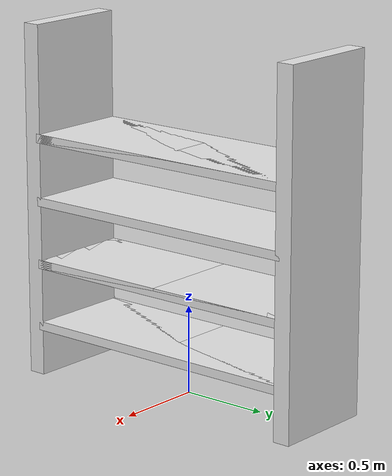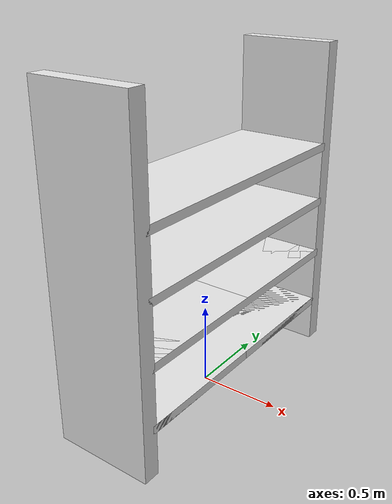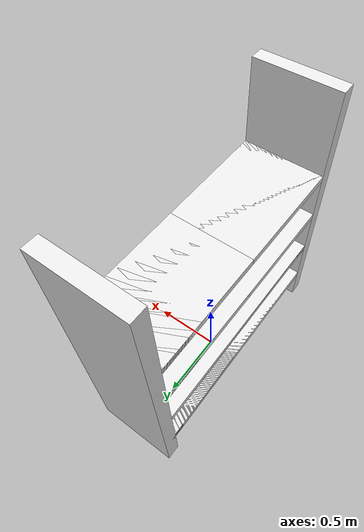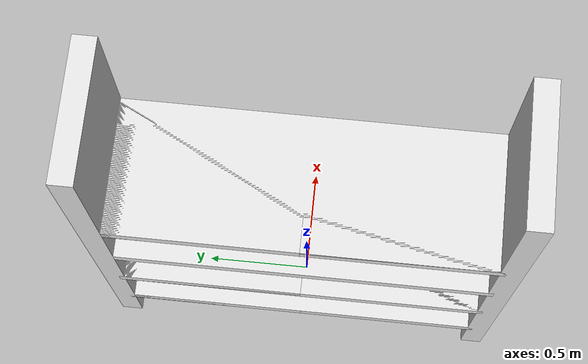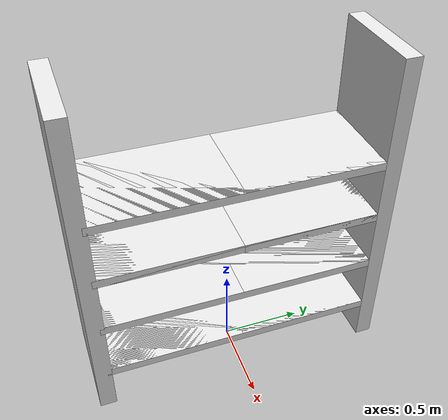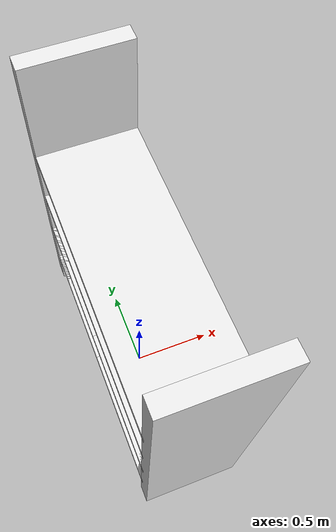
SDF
<?xml version="1.0"?>
<sdf version="1.6">
  <world name="rwc2015/bookcase">
    <light name="sun" type="directional">
      <direction>0.5 0.1 -0.9</direction>
      <pose>0 0 10 0 0 0</pose>
      <specular>0.2 0.2 0.2 1</specular>
      <cast_shadows>true</cast_shadows>
      <diffuse>0.8 0.8 0.8 1</diffuse>
      <attenuation>
        <range>1000</range>
        <quadratic>0.001</quadratic>
        <constant>0.9</constant>
        <linear>0.01</linear>
      </attenuation>
    </light>
    <include>
      <pose>0 0 0 0 0 0</pose>
      <name>bookcase_frame</name>
      <uri>model://rwc2015/bookcase/bookcase_frame</uri>
    </include>
    <include>
      <pose>0 0.4225 0.285 0 0 0</pose>
      <name>shelf1</name>
      <uri>model://rwc2015/bookcase/shelf</uri>
    </include>
    <include>
      <pose>0 0.4225 0.645 0 0 0</pose>
      <name>shelf2</name>
      <uri>model://rwc2015/bookcase/shelf</uri>
    </include>
    <include>
      <pose>0 0.4225 1.005 0 0 0</pose>
      <name>shelf3</name>
      <uri>model://rwc2015/bookcase/shelf</uri>
    </include>
    <include>
      <pose>0 0.4225 1.365 0 0 0</pose>
      <name>shelf4</name>
      <uri>model://rwc2015/bookcase/shelf</uri>
    </include>
    <include>
      <pose>0 -0.4225 0.285 0 0 0</pose>
      <name>shelf5</name>
      <uri>model://rwc2015/bookcase/shelf</uri>
    </include>
    <include>
      <pose>0 -0.4225 0.645 0 0 0</pose>
      <name>shelf6</name>
      <uri>model://rwc2015/bookcase/shelf</uri>
    </include>
    <include>
      <pose>0 -0.4225 1.005 0 0 0</pose>
      <name>shelf7</name>
      <uri>model://rwc2015/bookcase/shelf</uri>
    </include>
    <include>
      <pose>0 -0.4225 1.365 0 0 0</pose>
      <name>shelf8</name>
      <uri>model://rwc2015/bookcase/shelf</uri>
    </include>
    <physics type="ode">
      <real_time_update_rate>333.0</real_time_update_rate>
      <max_step_size>0.003</max_step_size>
      <ode>
        <constraints>
          <cfm>0.0001</cfm>
        </constraints>
        <solver>
          <type>quick</type>
          <iters>100</iters>
        </solver>
      </ode>
    </physics>
  </world>
</sdf>

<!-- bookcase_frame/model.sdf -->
<sdf version="1.6">
  <model name="rwc2015/bookcase/bookcase_frame">
    <link name="1_link">
      <collision name="1_col">
        <geometry>
          <box>
            <size>0.6 0.1 2.0</size>
          </box>
        </geometry>
      </collision>
      <visual name="1_vis">
        <geometry>
          <box>
            <size>0.6 0.1 2.0</size>
          </box>
        </geometry>
        <material>
          <ambient>0.9 0.9 0.9 1</ambient>
        </material>
      </visual>
      <pose>0.0 -0.87 1.0 0 0 0</pose>
    </link>
    <link name="2_link">
      <collision name="2_col">
        <geometry>
          <box>
            <size>0.6 0.1 2.0</size>
          </box>
        </geometry>
      </collision>
      <visual name="2_vis">
        <geometry>
          <box>
            <size>0.6 0.1 2.0</size>
          </box>
        </geometry>
        <material>
          <ambient>0.9 0.9 0.9 1</ambient>
        </material>
      </visual>
      <pose>0.0 0.87 1.0 0 0 0</pose>
    </link>
    <link name="3_link">
      <collision name="3_col">
        <geometry>
          <box>
            <size>0.6 1.69 0.05</size>
          </box>
        </geometry>
      </collision>
      <visual name="3_vis">
        <geometry>
          <box>
            <size>0.6 1.69 0.05</size>
          </box>
        </geometry>
        <material>
          <ambient>0.9 0.9 0.9 1</ambient>
        </material>
      </visual>
      <pose>0.0 0.0 0.285 0 0 0</pose>
    </link>
    <link name="4_link">
      <collision name="4_col">
        <geometry>
          <box>
            <size>0.6 1.69 0.05</size>
          </box>
        </geometry>
      </collision>
      <visual name="4_vis">
        <geometry>
          <box>
            <size>0.6 1.69 0.05</size>
          </box>
        </geometry>
        <material>
          <ambient>0.9 0.9 0.9 1</ambient>
        </material>
      </visual>
      <pose>0.0 0.0 0.645 0 0 0</pose>
    </link>
    <link name="5_link">
      <collision name="5_col">
        <geometry>
          <box>
            <size>0.6 1.69 0.05</size>
          </box>
        </geometry>
      </collision>
      <visual name="5_vis">
        <geometry>
          <box>
            <size>0.6 1.69 0.05</size>
          </box>
        </geometry>
        <material>
          <ambient>0.9 0.9 0.9 1</ambient>
        </material>
      </visual>
      <pose>0.0 0.0 1.005 0 0 0</pose>
    </link>
    <link name="6_link">
      <collision name="6_col">
        <geometry>
          <box>
            <size>0.6 1.69 0.05</size>
          </box>
        </geometry>
      </collision>
      <visual name="6_vis">
        <geometry>
          <box>
            <size>0.6 1.69 0.05</size>
          </box>
        </geometry>
        <material>
          <ambient>0.9 0.9 0.9 1</ambient>
        </material>
      </visual>
      <pose>0.0 0.0 1.365 0 0 0</pose>
    </link>
    <static>true</static>
  </model>
</sdf>

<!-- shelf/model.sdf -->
<sdf version="1.6">
  <model name="rwc2015/bookcase/shelf">
    <link name="1_link">
      <collision name="1_col">
        <geometry>
          <box>
            <size>0.6 0.845 0.05</size>
          </box>
        </geometry>
      </collision>
      <visual name="1_vis">
        <geometry>
          <box>
            <size>0.6 0.845 0.05</size>
          </box>
        </geometry>
        <material>
          <ambient>0.9 0.9 0.9 1</ambient>
        </material>
      </visual>
      <pose>0.0 0.0 0.0 0 0 0</pose>
    </link>
    <link name="in_front_of">
      <virtual_volume name="in_front_of_vv">
        <geometry>
          <box>
            <size>0.15 0.4 1.76</size>
          </box>
        </geometry>
        <pose>0.91 0.0 0.88 0 0 0</pose>
      </virtual_volume>
    </link>
    <link name="in">
      <virtual_volume name="in_vv">
        <geometry>
          <box>
            <size>0.6 1.6 0.2</size>
          </box>
        </geometry>
        <pose>0.0 0.0 0.1 0 0 0</pose>
      </virtual_volume>
    </link>
    <static>true</static>
  </model>
</sdf>
